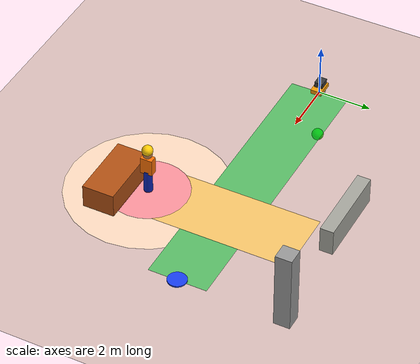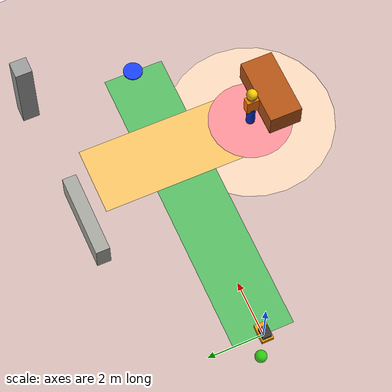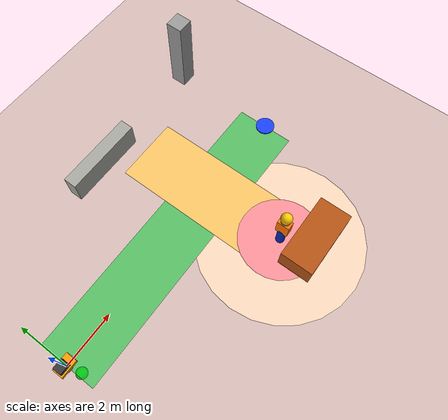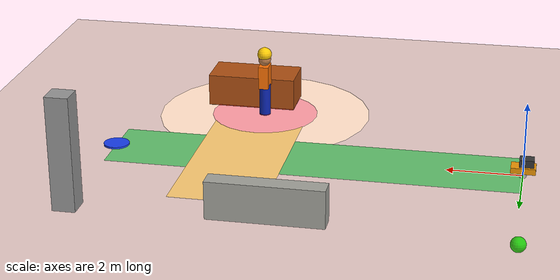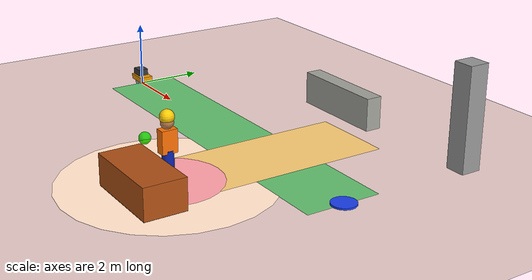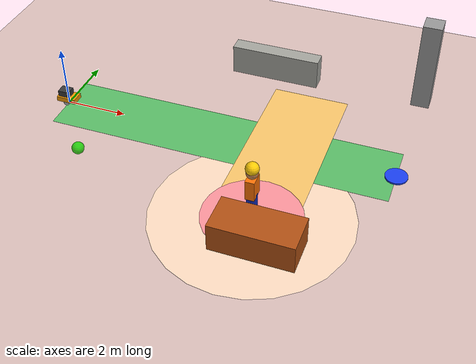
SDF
<?xml version="1.0" ?>
<sdf version="1.9">
  <world name="construction_crossing_scenario">
    <plugin filename="gz-sim-physics-system"
            name="gz::sim::systems::Physics"/>
    <plugin filename="gz-sim-user-commands-system"
            name="gz::sim::systems::UserCommands"/>
    <plugin filename="gz-sim-scene-broadcaster-system"
            name="gz::sim::systems::SceneBroadcaster"/>

    <gravity>0 0 -9.81</gravity>
    <scene>
      <ambient>0.55 0.55 0.55 1</ambient>
      <background>0.55 0.75 0.95 1</background>
      <shadows>true</shadows>
    </scene>

    <light type="directional" name="sun">
      <pose>0 0 15 0 0 0</pose>
      <diffuse>0.9 0.9 0.85 1</diffuse>
      <specular>0.2 0.2 0.2 1</specular>
      <direction>-0.5 0.2 -0.9</direction>
    </light>

    <model name="ground_plane">
      <static>true</static>
      <link name="ground_link">
        <collision name="ground_collision">
          <geometry><plane><normal>0 0 1</normal><size>30 18</size></plane></geometry>
        </collision>
        <visual name="ground_visual">
          <geometry><plane><normal>0 0 1</normal><size>30 18</size></plane></geometry>
          <material><ambient>0.45 0.35 0.22 1</ambient><diffuse>0.55 0.42 0.25 1</diffuse></material>
        </visual>
      </link>
    </model>

    <!-- Green transport lane and yellow crossing are visual experiment cues. -->
    <model name="transport_lane">
      <static>true</static><pose>5.5 0 0.006 0 0 0</pose>
      <link name="lane_link"><visual name="lane_visual">
        <geometry><box><size>11 2.2 0.01</size></box></geometry>
        <material><ambient>0.05 0.55 0.12 0.65</ambient><diffuse>0.05 0.7 0.15 0.65</diffuse></material>
        <transparency>0.35</transparency>
      </visual></link>
    </model>
    <model name="crossing_zone">
      <static>true</static><pose>7.5 0 0.014 0 0 0</pose>
      <link name="crossing_link"><visual name="crossing_visual">
        <geometry><box><size>2.5 6 0.012</size></box></geometry>
        <material><ambient>0.95 0.65 0.02 0.55</ambient><diffuse>1 0.72 0.02 0.55</diffuse></material>
        <transparency>0.45</transparency>
      </visual></link>
    </model>
    <model name="goal_marker">
      <static>true</static><pose>11 0 0.035 0 0 0</pose>
      <link name="goal_link"><visual name="goal_visual">
        <geometry><cylinder><radius>0.35</radius><length>0.05</length></cylinder></geometry>
        <material><ambient>0.1 0.25 0.95 1</ambient><diffuse>0.1 0.25 0.95 1</diffuse></material>
      </visual></link>
    </model>

    <!-- Minimal static construction context, kept away from the robot route. -->
    <model name="concrete_barrier_left">
      <static>true</static><pose>6 3.8 0.5 0 0 0</pose>
      <link name="link"><collision name="collision"><geometry><box><size>3 0.5 1</size></box></geometry></collision>
      <visual name="visual"><geometry><box><size>3 0.5 1</size></box></geometry>
      <material><ambient>0.55 0.55 0.52 1</ambient><diffuse>0.65 0.65 0.62 1</diffuse></material></visual></link>
    </model>
    <model name="material_stack_right">
      <static>true</static><pose>8 -4 0.45 0 0 0</pose>
      <link name="link"><collision name="collision"><geometry><box><size>2.5 1.2 0.9</size></box></geometry></collision>
      <visual name="visual"><geometry><box><size>2.5 1.2 0.9</size></box></geometry>
      <material><ambient>0.55 0.25 0.06 1</ambient><diffuse>0.7 0.32 0.08 1</diffuse></material></visual></link>
    </model>
    <model name="site_column">
      <static>true</static><pose>11 4 1.5 0 0 0</pose>
      <link name="link"><collision name="collision"><geometry><box><size>0.6 0.6 3</size></box></geometry></collision>
      <visual name="visual"><geometry><box><size>0.6 0.6 3</size></box></geometry>
      <material><ambient>0.5 0.5 0.5 1</ambient><diffuse>0.6 0.6 0.6 1</diffuse></material></visual></link>
    </model>

    <!-- Primitive worker: physics-safe placeholder for a later Blender asset. -->
    <model name="construction_worker">
      <static>true</static><pose>7.5 -3 0 0 0 1.57079632679</pose>
      <link name="worker_link">
        <visual name="dynamic_caution_zone"><pose>0 0 0.006 0 0 0</pose>
          <geometry><cylinder><radius>3.0</radius><length>0.006</length></cylinder></geometry>
          <material><ambient>1 0.72 0.02 0.18</ambient><diffuse>1 0.75 0.02 0.18</diffuse></material>
          <transparency>0.82</transparency>
        </visual>
        <visual name="dynamic_safety_zone"><pose>0 0 0.018 0 0 0</pose>
          <geometry><cylinder><radius>1.5</radius><length>0.012</length></cylinder></geometry>
          <material><ambient>0.95 0.02 0.02 0.35</ambient><diffuse>1 0.03 0.03 0.35</diffuse></material>
          <transparency>0.65</transparency>
        </visual>
        <collision name="body_collision"><pose>0 0 1.05 0 0 0</pose>
          <geometry><cylinder><radius>0.22</radius><length>1.1</length></cylinder></geometry>
        </collision>
        <visual name="legs"><pose>0 0 0.45 0 0 0</pose>
          <geometry><cylinder><radius>0.16</radius><length>0.9</length></cylinder></geometry>
          <material><ambient>0.05 0.12 0.55 1</ambient><diffuse>0.05 0.15 0.7 1</diffuse></material>
        </visual>
        <visual name="vest"><pose>0 0 1.15 0 0 0</pose>
          <geometry><box><size>0.45 0.28 0.65</size></box></geometry>
          <material><ambient>1 0.35 0.02 1</ambient><diffuse>1 0.45 0.02 1</diffuse></material>
        </visual>
        <visual name="head"><pose>0 0 1.65 0 0 0</pose>
          <geometry><sphere><radius>0.18</radius></sphere></geometry>
          <material><ambient>0.65 0.4 0.25 1</ambient><diffuse>0.75 0.5 0.3 1</diffuse></material>
        </visual>
        <visual name="helmet"><pose>0 0 1.8 0 0 0</pose>
          <geometry><sphere><radius>0.2</radius></sphere></geometry>
          <material><ambient>1 0.75 0.02 1</ambient><diffuse>1 0.8 0.02 1</diffuse></material>
        </visual>
      </link>
    </model>

    <!-- Only the active safety beacon is moved above the robot at runtime. -->
    <model name="safety_beacon_go">
      <static>true</static><pose>0 0 -2 0 0 0</pose>
      <link name="link"><visual name="visual">
        <geometry><sphere><radius>0.22</radius></sphere></geometry>
        <material><ambient>0.02 1 0.02 1</ambient><diffuse>0.02 1 0.02 1</diffuse><emissive>0.02 1 0.02 1</emissive></material>
      </visual></link>
    </model>
    <model name="safety_beacon_slow">
      <static>true</static><pose>0 0 -2 0 0 0</pose>
      <link name="link"><visual name="visual">
        <geometry><sphere><radius>0.22</radius></sphere></geometry>
        <material><ambient>1 0.8 0.02 1</ambient><diffuse>1 0.8 0.02 1</diffuse><emissive>1 0.8 0.02 1</emissive></material>
      </visual></link>
    </model>
    <model name="safety_beacon_stop">
      <static>true</static><pose>0 0 -2 0 0 0</pose>
      <link name="link"><visual name="visual">
        <geometry><sphere><radius>0.22</radius></sphere></geometry>
        <material><ambient>1 0.02 0.02 1</ambient><diffuse>1 0.02 0.02 1</diffuse><emissive>1 0.02 0.02 1</emissive></material>
      </visual></link>
    </model>
    <model name="safety_beacon_wait">
      <static>true</static><pose>0 0 -2 0 0 0</pose>
      <link name="link"><visual name="visual">
        <geometry><sphere><radius>0.22</radius></sphere></geometry>
        <material><ambient>1 0.8 0.02 1</ambient><diffuse>1 0.8 0.02 1</diffuse><emissive>1 0.8 0.02 1</emissive></material>
      </visual></link>
    </model>
    <model name="safety_beacon_resume">
      <static>true</static><pose>0 0 -2 0 0 0</pose>
      <link name="link"><visual name="visual">
        <geometry><sphere><radius>0.22</radius></sphere></geometry>
        <material><ambient>0.02 1 0.02 1</ambient><diffuse>0.02 1 0.02 1</diffuse><emissive>0.02 1 0.02 1</emissive></material>
      </visual></link>
    </model>
    <model name="safety_beacon_goal_reached">
      <static>true</static><pose>0 0 -2 0 0 0</pose>
      <link name="link"><visual name="visual">
        <geometry><sphere><radius>0.22</radius></sphere></geometry>
        <material><ambient>0.02 1 0.02 1</ambient><diffuse>0.02 1 0.02 1</diffuse><emissive>0.02 1 0.02 1</emissive></material>
      </visual></link>
    </model>

    <model name="minimal_robot">
      <pose>0 0 0.11 0 0 0</pose>
      <link name="chassis">
        <pose>0 0 0.10 0 0 0</pose>
        <inertial><mass>5.0</mass><inertia><ixx>0.0435</ixx><iyy>0.0727</iyy><izz>0.1042</izz></inertia></inertial>
        <collision name="chassis_collision"><geometry><box><size>0.4 0.3 0.12</size></box></geometry></collision>
        <visual name="chassis_visual"><geometry><box><size>0.65 0.42 0.16</size></box></geometry>
          <material><ambient>0.95 0.55 0.02 1</ambient><diffuse>0.95 0.6 0.02 1</diffuse></material></visual>
        <visual name="payload"><pose>-0.08 0 0.19 0 0 0</pose><geometry><box><size>0.38 0.32 0.2</size></box></geometry>
          <material><ambient>0.18 0.18 0.18 1</ambient><diffuse>0.22 0.22 0.22 1</diffuse></material></visual>
      </link>
      <link name="left_wheel">
        <pose>0 0.18 0 1.57079632679 0 0</pose>
        <inertial><mass>0.5</mass><inertia><ixx>0.00135</ixx><iyy>0.00135</iyy><izz>0.0025</izz></inertia></inertial>
        <collision name="collision"><geometry><cylinder><radius>0.1</radius><length>0.05</length></cylinder></geometry>
          <surface><friction><ode><mu>1</mu><mu2>1</mu2></ode></friction></surface></collision>
        <visual name="visual"><geometry><cylinder><radius>0.1</radius><length>0.05</length></cylinder></geometry></visual>
      </link>
      <link name="right_wheel">
        <pose>0 -0.18 0 1.57079632679 0 0</pose>
        <inertial><mass>0.5</mass><inertia><ixx>0.00135</ixx><iyy>0.00135</iyy><izz>0.0025</izz></inertia></inertial>
        <collision name="collision"><geometry><cylinder><radius>0.1</radius><length>0.05</length></cylinder></geometry>
          <surface><friction><ode><mu>1</mu><mu2>1</mu2></ode></friction></surface></collision>
        <visual name="visual"><geometry><cylinder><radius>0.1</radius><length>0.05</length></cylinder></geometry></visual>
      </link>
      <link name="rear_caster">
        <pose>-0.15 0 -0.06 0 0 0</pose><inertial><mass>0.1</mass><inertia><ixx>0.000064</ixx><iyy>0.000064</iyy><izz>0.000064</izz></inertia></inertial>
        <collision name="collision"><geometry><sphere><radius>0.04</radius></sphere></geometry><surface><friction><ode><mu>0</mu><mu2>0</mu2></ode></friction></surface></collision>
      </link>
      <link name="front_caster">
        <pose>0.15 0 -0.06 0 0 0</pose><inertial><mass>0.1</mass><inertia><ixx>0.000064</ixx><iyy>0.000064</iyy><izz>0.000064</izz></inertia></inertial>
        <collision name="collision"><geometry><sphere><radius>0.04</radius></sphere></geometry><surface><friction><ode><mu>0</mu><mu2>0</mu2></ode></friction></surface></collision>
      </link>
      <joint name="left_wheel_joint" type="revolute"><parent>chassis</parent><child>left_wheel</child><axis><xyz expressed_in="__model__">0 1 0</xyz></axis></joint>
      <joint name="right_wheel_joint" type="revolute"><parent>chassis</parent><child>right_wheel</child><axis><xyz expressed_in="__model__">0 1 0</xyz></axis></joint>
      <joint name="rear_caster_joint" type="fixed"><parent>chassis</parent><child>rear_caster</child></joint>
      <joint name="front_caster_joint" type="fixed"><parent>chassis</parent><child>front_caster</child></joint>
      <plugin filename="gz-sim-diff-drive-system" name="gz::sim::systems::DiffDrive">
        <left_joint>left_wheel_joint</left_joint><right_joint>right_wheel_joint</right_joint>
        <wheel_separation>0.36</wheel_separation><wheel_radius>0.1</wheel_radius>
        <topic>/model/minimal_robot/cmd_vel</topic><odom_topic>/model/minimal_robot/odometry</odom_topic>
        <frame_id>odom</frame_id><child_frame_id>minimal_robot/chassis</child_frame_id><odom_publish_frequency>30</odom_publish_frequency>
      </plugin>
    </model>
  </world>
</sdf>
